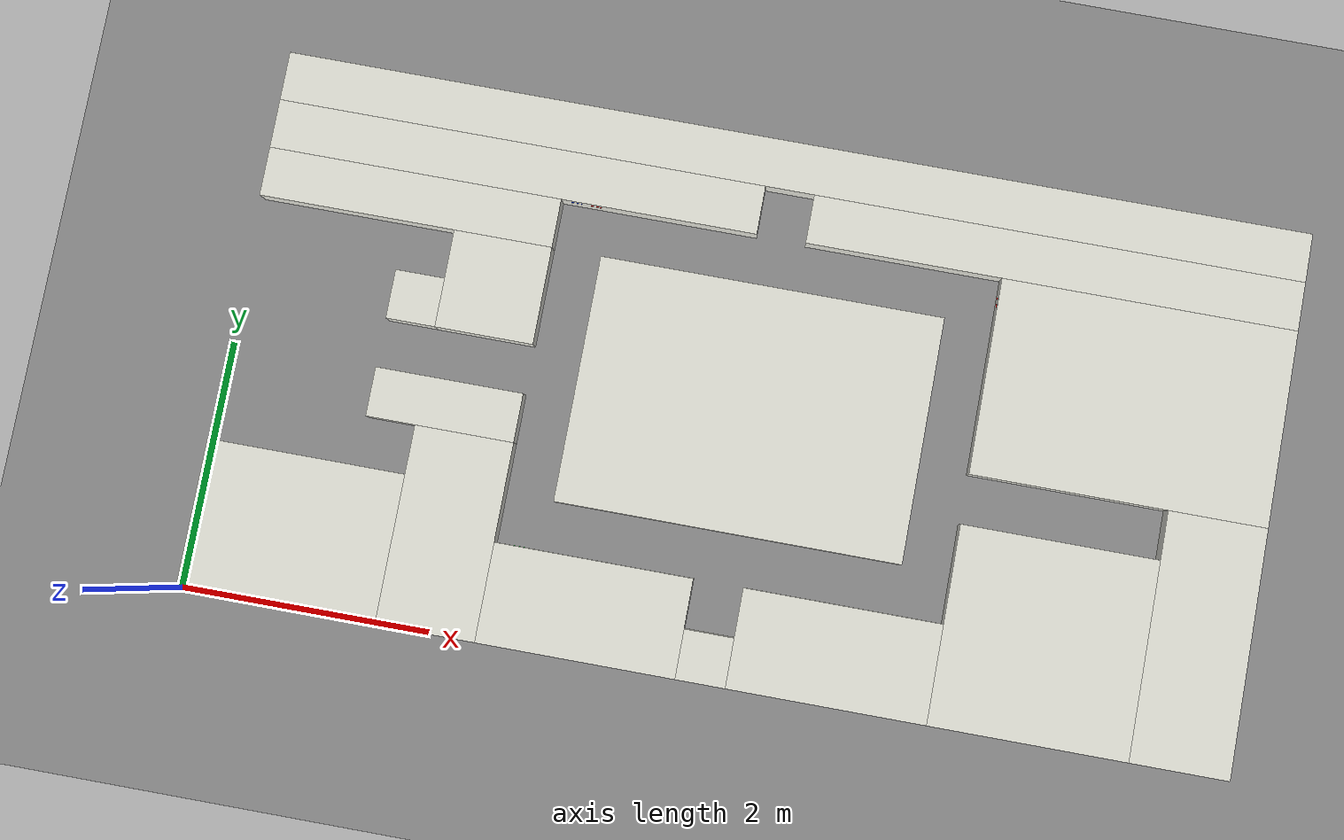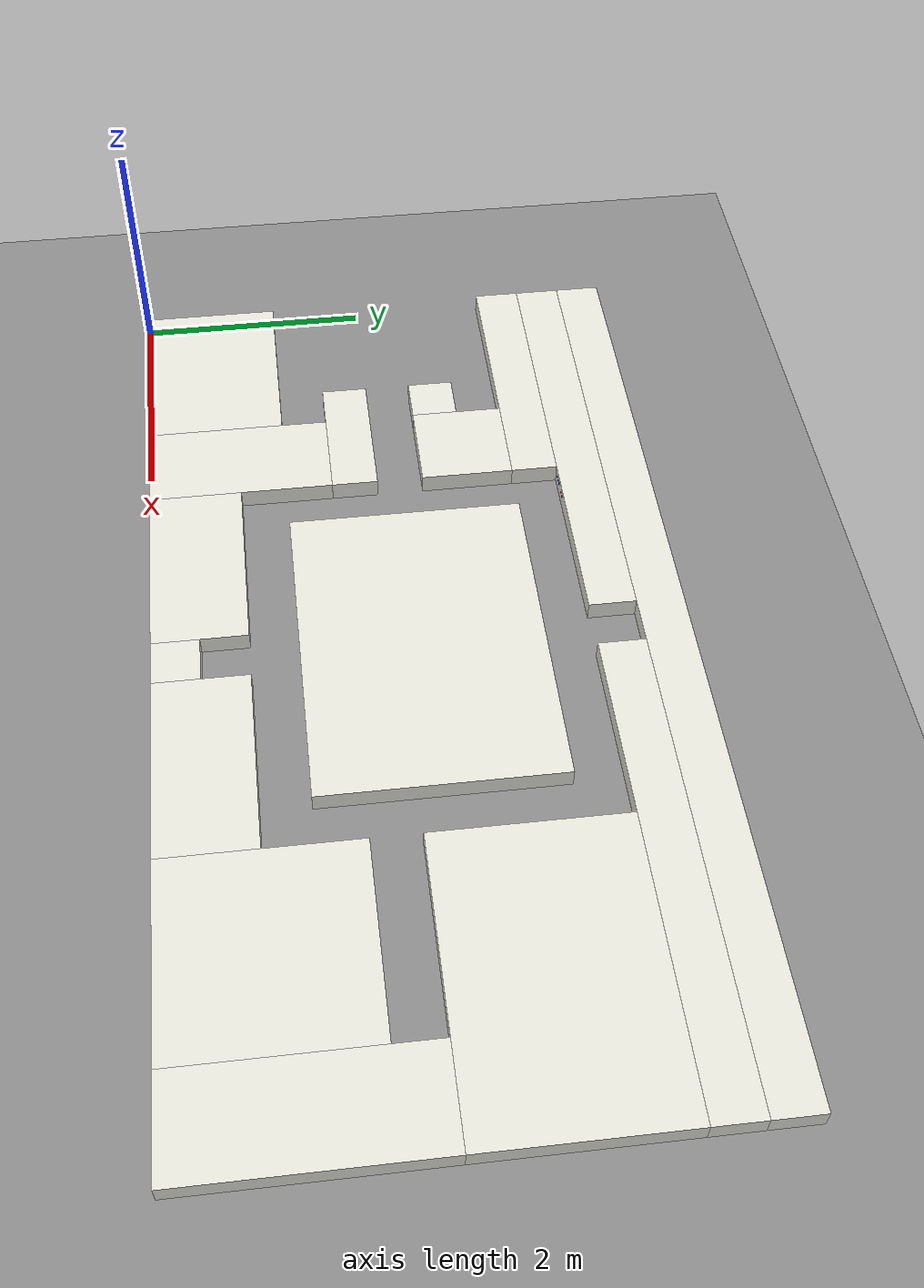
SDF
<sdf version="1.9">
 <world name="ros2_world">
  <model name="ground_plane">
   <static>true</static>
   <link name="link">
    <collision name="collision">
     <geometry><plane><normal>0 0 1</normal><size>30 30</size></plane></geometry>
    </collision>
    <visual name="visual">
     <geometry><plane><normal>0 0 1</normal><size>30 30</size></plane></geometry>
     <material><ambient>0.55 0.55 0.55 1</ambient><diffuse>0.55 0.55 0.55 1</diffuse></material>
    </visual>
   </link>
  </model>
  <model name="paredes">
   <static>true</static>
   <link name="bloque_0">
    <pose>4.2 4.2 0.085 0 0 0</pose>
    <collision name="colision"><geometry><box><size>8.4 0.4 0.17</size></box></geometry></collision>
    <visual name="visual">
     <geometry><box><size>8.4 0.4 0.17</size></box></geometry>
     <material><ambient>0.9 0.9 0.86 1</ambient><diffuse>0.9 0.9 0.86 1</diffuse></material>
    </visual>
   </link>
   <link name="bloque_1">
    <pose>2 3.8 0.085 0 0 0</pose>
    <collision name="colision"><geometry><box><size>4 0.4 0.17</size></box></geometry></collision>
    <visual name="visual">
     <geometry><box><size>4 0.4 0.17</size></box></geometry>
     <material><ambient>0.9 0.9 0.86 1</ambient><diffuse>0.9 0.9 0.86 1</diffuse></material>
    </visual>
   </link>
   <link name="bloque_2">
    <pose>6.4 3.8 0.085 0 0 0</pose>
    <collision name="colision"><geometry><box><size>4 0.4 0.17</size></box></geometry></collision>
    <visual name="visual">
     <geometry><box><size>4 0.4 0.17</size></box></geometry>
     <material><ambient>0.9 0.9 0.86 1</ambient><diffuse>0.9 0.9 0.86 1</diffuse></material>
    </visual>
   </link>
   <link name="bloque_3">
    <pose>1.2 3.4 0.085 0 0 0</pose>
    <collision name="colision"><geometry><box><size>2.4 0.4 0.17</size></box></geometry></collision>
    <visual name="visual">
     <geometry><box><size>2.4 0.4 0.17</size></box></geometry>
     <material><ambient>0.9 0.9 0.86 1</ambient><diffuse>0.9 0.9 0.86 1</diffuse></material>
    </visual>
   </link>
   <link name="bloque_4">
    <pose>7.2 2.8 0.085 0 0 0</pose>
    <collision name="colision"><geometry><box><size>2.4 1.6 0.17</size></box></geometry></collision>
    <visual name="visual">
     <geometry><box><size>2.4 1.6 0.17</size></box></geometry>
     <material><ambient>0.9 0.9 0.86 1</ambient><diffuse>0.9 0.9 0.86 1</diffuse></material>
    </visual>
   </link>
   <link name="bloque_5">
    <pose>2 2.8 0.085 0 0 0</pose>
    <collision name="colision"><geometry><box><size>0.8 0.8 0.17</size></box></geometry></collision>
    <visual name="visual">
     <geometry><box><size>0.8 0.8 0.17</size></box></geometry>
     <material><ambient>0.9 0.9 0.86 1</ambient><diffuse>0.9 0.9 0.86 1</diffuse></material>
    </visual>
   </link>
   <link name="bloque_6">
    <pose>4.2 2.2 0.085 0 0 0</pose>
    <collision name="colision"><geometry><box><size>2.8 2 0.17</size></box></geometry></collision>
    <visual name="visual">
     <geometry><box><size>2.8 2 0.17</size></box></geometry>
     <material><ambient>0.9 0.9 0.86 1</ambient><diffuse>0.9 0.9 0.86 1</diffuse></material>
    </visual>
   </link>
   <link name="bloque_7">
    <pose>1.4 2.6 0.085 0 0 0</pose>
    <collision name="colision"><geometry><box><size>0.4 0.4 0.17</size></box></geometry></collision>
    <visual name="visual">
     <geometry><box><size>0.4 0.4 0.17</size></box></geometry>
     <material><ambient>0.9 0.9 0.86 1</ambient><diffuse>0.9 0.9 0.86 1</diffuse></material>
    </visual>
   </link>
   <link name="bloque_8">
    <pose>1.8 1.8 0.085 0 0 0</pose>
    <collision name="colision"><geometry><box><size>1.2 0.4 0.17</size></box></geometry></collision>
    <visual name="visual">
     <geometry><box><size>1.2 0.4 0.17</size></box></geometry>
     <material><ambient>0.9 0.9 0.86 1</ambient><diffuse>0.9 0.9 0.86 1</diffuse></material>
    </visual>
   </link>
   <link name="bloque_9">
    <pose>8 1 0.085 0 0 0</pose>
    <collision name="colision"><geometry><box><size>0.8 2 0.17</size></box></geometry></collision>
    <visual name="visual">
     <geometry><box><size>0.8 2 0.17</size></box></geometry>
     <material><ambient>0.9 0.9 0.86 1</ambient><diffuse>0.9 0.9 0.86 1</diffuse></material>
    </visual>
   </link>
   <link name="bloque_10">
    <pose>2 0.8 0.085 0 0 0</pose>
    <collision name="colision"><geometry><box><size>0.8 1.6 0.17</size></box></geometry></collision>
    <visual name="visual">
     <geometry><box><size>0.8 1.6 0.17</size></box></geometry>
     <material><ambient>0.9 0.9 0.86 1</ambient><diffuse>0.9 0.9 0.86 1</diffuse></material>
    </visual>
   </link>
   <link name="bloque_11">
    <pose>6.8 0.8 0.085 0 0 0</pose>
    <collision name="colision"><geometry><box><size>1.6 1.6 0.17</size></box></geometry></collision>
    <visual name="visual">
     <geometry><box><size>1.6 1.6 0.17</size></box></geometry>
     <material><ambient>0.9 0.9 0.86 1</ambient><diffuse>0.9 0.9 0.86 1</diffuse></material>
    </visual>
   </link>
   <link name="bloque_12">
    <pose>0.8 0.6 0.085 0 0 0</pose>
    <collision name="colision"><geometry><box><size>1.6 1.2 0.17</size></box></geometry></collision>
    <visual name="visual">
     <geometry><box><size>1.6 1.2 0.17</size></box></geometry>
     <material><ambient>0.9 0.9 0.86 1</ambient><diffuse>0.9 0.9 0.86 1</diffuse></material>
    </visual>
   </link>
   <link name="bloque_13">
    <pose>3.2 0.4 0.085 0 0 0</pose>
    <collision name="colision"><geometry><box><size>1.6 0.8 0.17</size></box></geometry></collision>
    <visual name="visual">
     <geometry><box><size>1.6 0.8 0.17</size></box></geometry>
     <material><ambient>0.9 0.9 0.86 1</ambient><diffuse>0.9 0.9 0.86 1</diffuse></material>
    </visual>
   </link>
   <link name="bloque_14">
    <pose>5.2 0.4 0.085 0 0 0</pose>
    <collision name="colision"><geometry><box><size>1.6 0.8 0.17</size></box></geometry></collision>
    <visual name="visual">
     <geometry><box><size>1.6 0.8 0.17</size></box></geometry>
     <material><ambient>0.9 0.9 0.86 1</ambient><diffuse>0.9 0.9 0.86 1</diffuse></material>
    </visual>
   </link>
   <link name="bloque_15">
    <pose>4.2 0.2 0.085 0 0 0</pose>
    <collision name="colision"><geometry><box><size>0.4 0.4 0.17</size></box></geometry></collision>
    <visual name="visual">
     <geometry><box><size>0.4 0.4 0.17</size></box></geometry>
     <material><ambient>0.9 0.9 0.86 1</ambient><diffuse>0.9 0.9 0.86 1</diffuse></material>
    </visual>
   </link>
  </model>
  <model name="flechas">
   <static>true</static>
   <link name="flecha_0">
    <pose>2.52 3.59875 0.115 0 0 0</pose>
    <visual name="p0">
     <pose>-0.007 0 0 0 0 0</pose>
     <geometry><box><size>0.085 0.0015 0.01</size></box></geometry>
     <material><ambient>0 0.2 1 1</ambient><diffuse>0 0.2 1 1</diffuse></material>
    </visual>
    <visual name="p1">
     <pose>0.03578 0 0 0 0 0</pose>
     <geometry><box><size>0.00056 0.0015 0.029</size></box></geometry>
     <material><ambient>0 0.2 1 1</ambient><diffuse>0 0.2 1 1</diffuse></material>
    </visual>
    <visual name="p2">
     <pose>0.03634 0 0 0 0 0</pose>
     <geometry><box><size>0.00056 0.0015 0.02784</size></box></geometry>
     <material><ambient>0 0.2 1 1</ambient><diffuse>0 0.2 1 1</diffuse></material>
    </visual>
    <visual name="p3">
     <pose>0.0369 0 0 0 0 0</pose>
     <geometry><box><size>0.00056 0.0015 0.02668</size></box></geometry>
     <material><ambient>0 0.2 1 1</ambient><diffuse>0 0.2 1 1</diffuse></material>
    </visual>
    <visual name="p4">
     <pose>0.03746 0 0 0 0 0</pose>
     <geometry><box><size>0.00056 0.0015 0.02552</size></box></geometry>
     <material><ambient>0 0.2 1 1</ambient><diffuse>0 0.2 1 1</diffuse></material>
    </visual>
    <visual name="p5">
     <pose>0.03802 0 0 0 0 0</pose>
     <geometry><box><size>0.00056 0.0015 0.02436</size></box></geometry>
     <material><ambient>0 0.2 1 1</ambient><diffuse>0 0.2 1 1</diffuse></material>
    </visual>
    <visual name="p6">
     <pose>0.03858 0 0 0 0 0</pose>
     <geometry><box><size>0.00056 0.0015 0.0232</size></box></geometry>
     <material><ambient>0 0.2 1 1</ambient><diffuse>0 0.2 1 1</diffuse></material>
    </visual>
    <visual name="p7">
     <pose>0.03914 0 0 0 0 0</pose>
     <geometry><box><size>0.00056 0.0015 0.02204</size></box></geometry>
     <material><ambient>0 0.2 1 1</ambient><diffuse>0 0.2 1 1</diffuse></material>
    </visual>
    <visual name="p8">
     <pose>0.0397 0 0 0 0 0</pose>
     <geometry><box><size>0.00056 0.0015 0.02088</size></box></geometry>
     <material><ambient>0 0.2 1 1</ambient><diffuse>0 0.2 1 1</diffuse></material>
    </visual>
    <visual name="p9">
     <pose>0.04026 0 0 0 0 0</pose>
     <geometry><box><size>0.00056 0.0015 0.01972</size></box></geometry>
     <material><ambient>0 0.2 1 1</ambient><diffuse>0 0.2 1 1</diffuse></material>
    </visual>
    <visual name="p10">
     <pose>0.04082 0 0 0 0 0</pose>
     <geometry><box><size>0.00056 0.0015 0.01856</size></box></geometry>
     <material><ambient>0 0.2 1 1</ambient><diffuse>0 0.2 1 1</diffuse></material>
    </visual>
    <visual name="p11">
     <pose>0.04138 0 0 0 0 0</pose>
     <geometry><box><size>0.00056 0.0015 0.0174</size></box></geometry>
     <material><ambient>0 0.2 1 1</ambient><diffuse>0 0.2 1 1</diffuse></material>
    </visual>
    <visual name="p12">
     <pose>0.04194 0 0 0 0 0</pose>
     <geometry><box><size>0.00056 0.0015 0.01624</size></box></geometry>
     <material><ambient>0 0.2 1 1</ambient><diffuse>0 0.2 1 1</diffuse></material>
    </visual>
    <visual name="p13">
     <pose>0.0425 0 0 0 0 0</pose>
     <geometry><box><size>0.00056 0.0015 0.01508</size></box></geometry>
     <material><ambient>0 0.2 1 1</ambient><diffuse>0 0.2 1 1</diffuse></material>
    </visual>
    <visual name="p14">
     <pose>0.04306 0 0 0 0 0</pose>
     <geometry><box><size>0.00056 0.0015 0.01392</size></box></geometry>
     <material><ambient>0 0.2 1 1</ambient><diffuse>0 0.2 1 1</diffuse></material>
    </visual>
    <visual name="p15">
     <pose>0.04362 0 0 0 0 0</pose>
     <geometry><box><size>0.00056 0.0015 0.01276</size></box></geometry>
     <material><ambient>0 0.2 1 1</ambient><diffuse>0 0.2 1 1</diffuse></material>
    </visual>
    <visual name="p16">
     <pose>0.04418 0 0 0 0 0</pose>
     <geometry><box><size>0.00056 0.0015 0.0116</size></box></geometry>
     <material><ambient>0 0.2 1 1</ambient><diffuse>0 0.2 1 1</diffuse></material>
    </visual>
    <visual name="p17">
     <pose>0.04474 0 0 0 0 0</pose>
     <geometry><box><size>0.00056 0.0015 0.01044</size></box></geometry>
     <material><ambient>0 0.2 1 1</ambient><diffuse>0 0.2 1 1</diffuse></material>
    </visual>
    <visual name="p18">
     <pose>0.0453 0 0 0 0 0</pose>
     <geometry><box><size>0.00056 0.0015 0.00928</size></box></geometry>
     <material><ambient>0 0.2 1 1</ambient><diffuse>0 0.2 1 1</diffuse></material>
    </visual>
    <visual name="p19">
     <pose>0.04586 0 0 0 0 0</pose>
     <geometry><box><size>0.00056 0.0015 0.00812</size></box></geometry>
     <material><ambient>0 0.2 1 1</ambient><diffuse>0 0.2 1 1</diffuse></material>
    </visual>
    <visual name="p20">
     <pose>0.04642 0 0 0 0 0</pose>
     <geometry><box><size>0.00056 0.0015 0.00696</size></box></geometry>
     <material><ambient>0 0.2 1 1</ambient><diffuse>0 0.2 1 1</diffuse></material>
    </visual>
    <visual name="p21">
     <pose>0.04698 0 0 0 0 0</pose>
     <geometry><box><size>0.00056 0.0015 0.0058</size></box></geometry>
     <material><ambient>0 0.2 1 1</ambient><diffuse>0 0.2 1 1</diffuse></material>
    </visual>
    <visual name="p22">
     <pose>0.04754 0 0 0 0 0</pose>
     <geometry><box><size>0.00056 0.0015 0.00464</size></box></geometry>
     <material><ambient>0 0.2 1 1</ambient><diffuse>0 0.2 1 1</diffuse></material>
    </visual>
    <visual name="p23">
     <pose>0.0481 0 0 0 0 0</pose>
     <geometry><box><size>0.00056 0.0015 0.00348</size></box></geometry>
     <material><ambient>0 0.2 1 1</ambient><diffuse>0 0.2 1 1</diffuse></material>
    </visual>
    <visual name="p24">
     <pose>0.04866 0 0 0 0 0</pose>
     <geometry><box><size>0.00056 0.0015 0.00232</size></box></geometry>
     <material><ambient>0 0.2 1 1</ambient><diffuse>0 0.2 1 1</diffuse></material>
    </visual>
    <visual name="p25">
     <pose>0.04922 0 0 0 0 0</pose>
     <geometry><box><size>0.00056 0.0015 0.00116</size></box></geometry>
     <material><ambient>0 0.2 1 1</ambient><diffuse>0 0.2 1 1</diffuse></material>
    </visual>
   </link>
   <link name="flecha_1">
    <pose>2.68 3.59875 0.115 0 0 0</pose>
    <visual name="p0">
     <pose>-0.007 0 0 0 0 0</pose>
     <geometry><box><size>0.085 0.0015 0.01</size></box></geometry>
     <material><ambient>1 0 0 1</ambient><diffuse>1 0 0 1</diffuse></material>
    </visual>
    <visual name="p1">
     <pose>0.03578 0 0 0 0 0</pose>
     <geometry><box><size>0.00056 0.0015 0.029</size></box></geometry>
     <material><ambient>1 0 0 1</ambient><diffuse>1 0 0 1</diffuse></material>
    </visual>
    <visual name="p2">
     <pose>0.03634 0 0 0 0 0</pose>
     <geometry><box><size>0.00056 0.0015 0.02784</size></box></geometry>
     <material><ambient>1 0 0 1</ambient><diffuse>1 0 0 1</diffuse></material>
    </visual>
    <visual name="p3">
     <pose>0.0369 0 0 0 0 0</pose>
     <geometry><box><size>0.00056 0.0015 0.02668</size></box></geometry>
     <material><ambient>1 0 0 1</ambient><diffuse>1 0 0 1</diffuse></material>
    </visual>
    <visual name="p4">
     <pose>0.03746 0 0 0 0 0</pose>
     <geometry><box><size>0.00056 0.0015 0.02552</size></box></geometry>
     <material><ambient>1 0 0 1</ambient><diffuse>1 0 0 1</diffuse></material>
    </visual>
    <visual name="p5">
     <pose>0.03802 0 0 0 0 0</pose>
     <geometry><box><size>0.00056 0.0015 0.02436</size></box></geometry>
     <material><ambient>1 0 0 1</ambient><diffuse>1 0 0 1</diffuse></material>
    </visual>
    <visual name="p6">
     <pose>0.03858 0 0 0 0 0</pose>
     <geometry><box><size>0.00056 0.0015 0.0232</size></box></geometry>
     <material><ambient>1 0 0 1</ambient><diffuse>1 0 0 1</diffuse></material>
    </visual>
    <visual name="p7">
     <pose>0.03914 0 0 0 0 0</pose>
     <geometry><box><size>0.00056 0.0015 0.02204</size></box></geometry>
     <material><ambient>1 0 0 1</ambient><diffuse>1 0 0 1</diffuse></material>
    </visual>
    <visual name="p8">
     <pose>0.0397 0 0 0 0 0</pose>
     <geometry><box><size>0.00056 0.0015 0.02088</size></box></geometry>
     <material><ambient>1 0 0 1</ambient><diffuse>1 0 0 1</diffuse></material>
    </visual>
    <visual name="p9">
     <pose>0.04026 0 0 0 0 0</pose>
     <geometry><box><size>0.00056 0.0015 0.01972</size></box></geometry>
     <material><ambient>1 0 0 1</ambient><diffuse>1 0 0 1</diffuse></material>
    </visual>
    <visual name="p10">
     <pose>0.04082 0 0 0 0 0</pose>
     <geometry><box><size>0.00056 0.0015 0.01856</size></box></geometry>
     <material><ambient>1 0 0 1</ambient><diffuse>1 0 0 1</diffuse></material>
    </visual>
    <visual name="p11">
     <pose>0.04138 0 0 0 0 0</pose>
     <geometry><box><size>0.00056 0.0015 0.0174</size></box></geometry>
     <material><ambient>1 0 0 1</ambient><diffuse>1 0 0 1</diffuse></material>
    </visual>
    <visual name="p12">
     <pose>0.04194 0 0 0 0 0</pose>
     <geometry><box><size>0.00056 0.0015 0.01624</size></box></geometry>
     <material><ambient>1 0 0 1</ambient><diffuse>1 0 0 1</diffuse></material>
    </visual>
    <visual name="p13">
     <pose>0.0425 0 0 0 0 0</pose>
     <geometry><box><size>0.00056 0.0015 0.01508</size></box></geometry>
     <material><ambient>1 0 0 1</ambient><diffuse>1 0 0 1</diffuse></material>
    </visual>
    <visual name="p14">
     <pose>0.04306 0 0 0 0 0</pose>
     <geometry><box><size>0.00056 0.0015 0.01392</size></box></geometry>
     <material><ambient>1 0 0 1</ambient><diffuse>1 0 0 1</diffuse></material>
    </visual>
    <visual name="p15">
     <pose>0.04362 0 0 0 0 0</pose>
     <geometry><box><size>0.00056 0.0015 0.01276</size></box></geometry>
     <material><ambient>1 0 0 1</ambient><diffuse>1 0 0 1</diffuse></material>
    </visual>
    <visual name="p16">
     <pose>0.04418 0 0 0 0 0</pose>
     <geometry><box><size>0.00056 0.0015 0.0116</size></box></geometry>
     <material><ambient>1 0 0 1</ambient><diffuse>1 0 0 1</diffuse></material>
    </visual>
    <visual name="p17">
     <pose>0.04474 0 0 0 0 0</pose>
     <geometry><box><size>0.00056 0.0015 0.01044</size></box></geometry>
     <material><ambient>1 0 0 1</ambient><diffuse>1 0 0 1</diffuse></material>
    </visual>
    <visual name="p18">
     <pose>0.0453 0 0 0 0 0</pose>
     <geometry><box><size>0.00056 0.0015 0.00928</size></box></geometry>
     <material><ambient>1 0 0 1</ambient><diffuse>1 0 0 1</diffuse></material>
    </visual>
    <visual name="p19">
     <pose>0.04586 0 0 0 0 0</pose>
     <geometry><box><size>0.00056 0.0015 0.00812</size></box></geometry>
     <material><ambient>1 0 0 1</ambient><diffuse>1 0 0 1</diffuse></material>
    </visual>
    <visual name="p20">
     <pose>0.04642 0 0 0 0 0</pose>
     <geometry><box><size>0.00056 0.0015 0.00696</size></box></geometry>
     <material><ambient>1 0 0 1</ambient><diffuse>1 0 0 1</diffuse></material>
    </visual>
    <visual name="p21">
     <pose>0.04698 0 0 0 0 0</pose>
     <geometry><box><size>0.00056 0.0015 0.0058</size></box></geometry>
     <material><ambient>1 0 0 1</ambient><diffuse>1 0 0 1</diffuse></material>
    </visual>
    <visual name="p22">
     <pose>0.04754 0 0 0 0 0</pose>
     <geometry><box><size>0.00056 0.0015 0.00464</size></box></geometry>
     <material><ambient>1 0 0 1</ambient><diffuse>1 0 0 1</diffuse></material>
    </visual>
    <visual name="p23">
     <pose>0.0481 0 0 0 0 0</pose>
     <geometry><box><size>0.00056 0.0015 0.00348</size></box></geometry>
     <material><ambient>1 0 0 1</ambient><diffuse>1 0 0 1</diffuse></material>
    </visual>
    <visual name="p24">
     <pose>0.04866 0 0 0 0 0</pose>
     <geometry><box><size>0.00056 0.0015 0.00232</size></box></geometry>
     <material><ambient>1 0 0 1</ambient><diffuse>1 0 0 1</diffuse></material>
    </visual>
    <visual name="p25">
     <pose>0.04922 0 0 0 0 0</pose>
     <geometry><box><size>0.00056 0.0015 0.00116</size></box></geometry>
     <material><ambient>1 0 0 1</ambient><diffuse>1 0 0 1</diffuse></material>
    </visual>
   </link>
   <link name="flecha_2">
    <pose>5.99875 3.4 0.115 0 -0.31416 -1.5708</pose>
    <visual name="p0">
     <pose>-0.007 0 0 0 0 0</pose>
     <geometry><box><size>0.085 0.0015 0.01</size></box></geometry>
     <material><ambient>1 0 0 1</ambient><diffuse>1 0 0 1</diffuse></material>
    </visual>
    <visual name="p1">
     <pose>0.03578 0 0 0 0 0</pose>
     <geometry><box><size>0.00056 0.0015 0.029</size></box></geometry>
     <material><ambient>1 0 0 1</ambient><diffuse>1 0 0 1</diffuse></material>
    </visual>
    <visual name="p2">
     <pose>0.03634 0 0 0 0 0</pose>
     <geometry><box><size>0.00056 0.0015 0.02784</size></box></geometry>
     <material><ambient>1 0 0 1</ambient><diffuse>1 0 0 1</diffuse></material>
    </visual>
    <visual name="p3">
     <pose>0.0369 0 0 0 0 0</pose>
     <geometry><box><size>0.00056 0.0015 0.02668</size></box></geometry>
     <material><ambient>1 0 0 1</ambient><diffuse>1 0 0 1</diffuse></material>
    </visual>
    <visual name="p4">
     <pose>0.03746 0 0 0 0 0</pose>
     <geometry><box><size>0.00056 0.0015 0.02552</size></box></geometry>
     <material><ambient>1 0 0 1</ambient><diffuse>1 0 0 1</diffuse></material>
    </visual>
    <visual name="p5">
     <pose>0.03802 0 0 0 0 0</pose>
     <geometry><box><size>0.00056 0.0015 0.02436</size></box></geometry>
     <material><ambient>1 0 0 1</ambient><diffuse>1 0 0 1</diffuse></material>
    </visual>
    <visual name="p6">
     <pose>0.03858 0 0 0 0 0</pose>
     <geometry><box><size>0.00056 0.0015 0.0232</size></box></geometry>
     <material><ambient>1 0 0 1</ambient><diffuse>1 0 0 1</diffuse></material>
    </visual>
    <visual name="p7">
     <pose>0.03914 0 0 0 0 0</pose>
     <geometry><box><size>0.00056 0.0015 0.02204</size></box></geometry>
     <material><ambient>1 0 0 1</ambient><diffuse>1 0 0 1</diffuse></material>
    </visual>
    <visual name="p8">
     <pose>0.0397 0 0 0 0 0</pose>
     <geometry><box><size>0.00056 0.0015 0.02088</size></box></geometry>
     <material><ambient>1 0 0 1</ambient><diffuse>1 0 0 1</diffuse></material>
    </visual>
    <visual name="p9">
     <pose>0.04026 0 0 0 0 0</pose>
     <geometry><box><size>0.00056 0.0015 0.01972</size></box></geometry>
     <material><ambient>1 0 0 1</ambient><diffuse>1 0 0 1</diffuse></material>
    </visual>
    <visual name="p10">
     <pose>0.04082 0 0 0 0 0</pose>
     <geometry><box><size>0.00056 0.0015 0.01856</size></box></geometry>
     <material><ambient>1 0 0 1</ambient><diffuse>1 0 0 1</diffuse></material>
    </visual>
    <visual name="p11">
     <pose>0.04138 0 0 0 0 0</pose>
     <geometry><box><size>0.00056 0.0015 0.0174</size></box></geometry>
     <material><ambient>1 0 0 1</ambient><diffuse>1 0 0 1</diffuse></material>
    </visual>
    <visual name="p12">
     <pose>0.04194 0 0 0 0 0</pose>
     <geometry><box><size>0.00056 0.0015 0.01624</size></box></geometry>
     <material><ambient>1 0 0 1</ambient><diffuse>1 0 0 1</diffuse></material>
    </visual>
    <visual name="p13">
     <pose>0.0425 0 0 0 0 0</pose>
     <geometry><box><size>0.00056 0.0015 0.01508</size></box></geometry>
     <material><ambient>1 0 0 1</ambient><diffuse>1 0 0 1</diffuse></material>
    </visual>
    <visual name="p14">
     <pose>0.04306 0 0 0 0 0</pose>
     <geometry><box><size>0.00056 0.0015 0.01392</size></box></geometry>
     <material><ambient>1 0 0 1</ambient><diffuse>1 0 0 1</diffuse></material>
    </visual>
    <visual name="p15">
     <pose>0.04362 0 0 0 0 0</pose>
     <geometry><box><size>0.00056 0.0015 0.01276</size></box></geometry>
     <material><ambient>1 0 0 1</ambient><diffuse>1 0 0 1</diffuse></material>
    </visual>
    <visual name="p16">
     <pose>0.04418 0 0 0 0 0</pose>
     <geometry><box><size>0.00056 0.0015 0.0116</size></box></geometry>
     <material><ambient>1 0 0 1</ambient><diffuse>1 0 0 1</diffuse></material>
    </visual>
    <visual name="p17">
     <pose>0.04474 0 0 0 0 0</pose>
     <geometry><box><size>0.00056 0.0015 0.01044</size></box></geometry>
     <material><ambient>1 0 0 1</ambient><diffuse>1 0 0 1</diffuse></material>
    </visual>
    <visual name="p18">
     <pose>0.0453 0 0 0 0 0</pose>
     <geometry><box><size>0.00056 0.0015 0.00928</size></box></geometry>
     <material><ambient>1 0 0 1</ambient><diffuse>1 0 0 1</diffuse></material>
    </visual>
    <visual name="p19">
     <pose>0.04586 0 0 0 0 0</pose>
     <geometry><box><size>0.00056 0.0015 0.00812</size></box></geometry>
     <material><ambient>1 0 0 1</ambient><diffuse>1 0 0 1</diffuse></material>
    </visual>
    <visual name="p20">
     <pose>0.04642 0 0 0 0 0</pose>
     <geometry><box><size>0.00056 0.0015 0.00696</size></box></geometry>
     <material><ambient>1 0 0 1</ambient><diffuse>1 0 0 1</diffuse></material>
    </visual>
    <visual name="p21">
     <pose>0.04698 0 0 0 0 0</pose>
     <geometry><box><size>0.00056 0.0015 0.0058</size></box></geometry>
     <material><ambient>1 0 0 1</ambient><diffuse>1 0 0 1</diffuse></material>
    </visual>
    <visual name="p22">
     <pose>0.04754 0 0 0 0 0</pose>
     <geometry><box><size>0.00056 0.0015 0.00464</size></box></geometry>
     <material><ambient>1 0 0 1</ambient><diffuse>1 0 0 1</diffuse></material>
    </visual>
    <visual name="p23">
     <pose>0.0481 0 0 0 0 0</pose>
     <geometry><box><size>0.00056 0.0015 0.00348</size></box></geometry>
     <material><ambient>1 0 0 1</ambient><diffuse>1 0 0 1</diffuse></material>
    </visual>
    <visual name="p24">
     <pose>0.04866 0 0 0 0 0</pose>
     <geometry><box><size>0.00056 0.0015 0.00232</size></box></geometry>
     <material><ambient>1 0 0 1</ambient><diffuse>1 0 0 1</diffuse></material>
    </visual>
    <visual name="p25">
     <pose>0.04922 0 0 0 0 0</pose>
     <geometry><box><size>0.00056 0.0015 0.00116</size></box></geometry>
     <material><ambient>1 0 0 1</ambient><diffuse>1 0 0 1</diffuse></material>
    </visual>
   </link>
   <link name="flecha_3">
    <pose>2.79875 2.12 0.115 0 0 1.5708</pose>
    <visual name="p0">
     <pose>-0.007 0 0 0 0 0</pose>
     <geometry><box><size>0.085 0.0015 0.01</size></box></geometry>
     <material><ambient>0 0.2 1 1</ambient><diffuse>0 0.2 1 1</diffuse></material>
    </visual>
    <visual name="p1">
     <pose>0.03578 0 0 0 0 0</pose>
     <geometry><box><size>0.00056 0.0015 0.029</size></box></geometry>
     <material><ambient>0 0.2 1 1</ambient><diffuse>0 0.2 1 1</diffuse></material>
    </visual>
    <visual name="p2">
     <pose>0.03634 0 0 0 0 0</pose>
     <geometry><box><size>0.00056 0.0015 0.02784</size></box></geometry>
     <material><ambient>0 0.2 1 1</ambient><diffuse>0 0.2 1 1</diffuse></material>
    </visual>
    <visual name="p3">
     <pose>0.0369 0 0 0 0 0</pose>
     <geometry><box><size>0.00056 0.0015 0.02668</size></box></geometry>
     <material><ambient>0 0.2 1 1</ambient><diffuse>0 0.2 1 1</diffuse></material>
    </visual>
    <visual name="p4">
     <pose>0.03746 0 0 0 0 0</pose>
     <geometry><box><size>0.00056 0.0015 0.02552</size></box></geometry>
     <material><ambient>0 0.2 1 1</ambient><diffuse>0 0.2 1 1</diffuse></material>
    </visual>
    <visual name="p5">
     <pose>0.03802 0 0 0 0 0</pose>
     <geometry><box><size>0.00056 0.0015 0.02436</size></box></geometry>
     <material><ambient>0 0.2 1 1</ambient><diffuse>0 0.2 1 1</diffuse></material>
    </visual>
    <visual name="p6">
     <pose>0.03858 0 0 0 0 0</pose>
     <geometry><box><size>0.00056 0.0015 0.0232</size></box></geometry>
     <material><ambient>0 0.2 1 1</ambient><diffuse>0 0.2 1 1</diffuse></material>
    </visual>
    <visual name="p7">
     <pose>0.03914 0 0 0 0 0</pose>
     <geometry><box><size>0.00056 0.0015 0.02204</size></box></geometry>
     <material><ambient>0 0.2 1 1</ambient><diffuse>0 0.2 1 1</diffuse></material>
    </visual>
    <visual name="p8">
     <pose>0.0397 0 0 0 0 0</pose>
     <geometry><box><size>0.00056 0.0015 0.02088</size></box></geometry>
     <material><ambient>0 0.2 1 1</ambient><diffuse>0 0.2 1 1</diffuse></material>
    </visual>
    <visual name="p9">
     <pose>0.04026 0 0 0 0 0</pose>
     <geometry><box><size>0.00056 0.0015 0.01972</size></box></geometry>
     <material><ambient>0 0.2 1 1</ambient><diffuse>0 0.2 1 1</diffuse></material>
    </visual>
    <visual name="p10">
     <pose>0.04082 0 0 0 0 0</pose>
     <geometry><box><size>0.00056 0.0015 0.01856</size></box></geometry>
     <material><ambient>0 0.2 1 1</ambient><diffuse>0 0.2 1 1</diffuse></material>
    </visual>
    <visual name="p11">
     <pose>0.04138 0 0 0 0 0</pose>
     <geometry><box><size>0.00056 0.0015 0.0174</size></box></geometry>
     <material><ambient>0 0.2 1 1</ambient><diffuse>0 0.2 1 1</diffuse></material>
    </visual>
    <visual name="p12">
     <pose>0.04194 0 0 0 0 0</pose>
     <geometry><box><size>0.00056 0.0015 0.01624</size></box></geometry>
     <material><ambient>0 0.2 1 1</ambient><diffuse>0 0.2 1 1</diffuse></material>
    </visual>
    <visual name="p13">
     <pose>0.0425 0 0 0 0 0</pose>
     <geometry><box><size>0.00056 0.0015 0.01508</size></box></geometry>
     <material><ambient>0 0.2 1 1</ambient><diffuse>0 0.2 1 1</diffuse></material>
    </visual>
    <visual name="p14">
     <pose>0.04306 0 0 0 0 0</pose>
     <geometry><box><size>0.00056 0.0015 0.01392</size></box></geometry>
     <material><ambient>0 0.2 1 1</ambient><diffuse>0 0.2 1 1</diffuse></material>
    </visual>
    <visual name="p15">
     <pose>0.04362 0 0 0 0 0</pose>
     <geometry><box><size>0.00056 0.0015 0.01276</size></box></geometry>
     <material><ambient>0 0.2 1 1</ambient><diffuse>0 0.2 1 1</diffuse></material>
    </visual>
    <visual name="p16">
     <pose>0.04418 0 0 0 0 0</pose>
     <geometry><box><size>0.00056 0.0015 0.0116</size></box></geometry>
     <material><ambient>0 0.2 1 1</ambient><diffuse>0 0.2 1 1</diffuse></material>
    </visual>
    <visual name="p17">
     <pose>0.04474 0 0 0 0 0</pose>
     <geometry><box><size>0.00056 0.0015 0.01044</size></box></geometry>
     <material><ambient>0 0.2 1 1</ambient><diffuse>0 0.2 1 1</diffuse></material>
    </visual>
    <visual name="p18">
     <pose>0.0453 0 0 0 0 0</pose>
     <geometry><box><size>0.00056 0.0015 0.00928</size></box></geometry>
     <material><ambient>0 0.2 1 1</ambient><diffuse>0 0.2 1 1</diffuse></material>
    </visual>
    <visual name="p19">
     <pose>0.04586 0 0 0 0 0</pose>
     <geometry><box><size>0.00056 0.0015 0.00812</size></box></geometry>
     <material><ambient>0 0.2 1 1</ambient><diffuse>0 0.2 1 1</diffuse></material>
    </visual>
    <visual name="p20">
     <pose>0.04642 0 0 0 0 0</pose>
     <geometry><box><size>0.00056 0.0015 0.00696</size></box></geometry>
     <material><ambient>0 0.2 1 1</ambient><diffuse>0 0.2 1 1</diffuse></material>
    </visual>
    <visual name="p21">
     <pose>0.04698 0 0 0 0 0</pose>
     <geometry><box><size>0.00056 0.0015 0.0058</size></box></geometry>
     <material><ambient>0 0.2 1 1</ambient><diffuse>0 0.2 1 1</diffuse></material>
    </visual>
    <visual name="p22">
     <pose>0.04754 0 0 0 0 0</pose>
     <geometry><box><size>0.00056 0.0015 0.00464</size></box></geometry>
     <material><ambient>0 0.2 1 1</ambient><diffuse>0 0.2 1 1</diffuse></material>
    </visual>
    <visual name="p23">
     <pose>0.0481 0 0 0 0 0</pose>
     <geometry><box><size>0.00056 0.0015 0.00348</size></box></geometry>
     <material><ambient>0 0.2 1 1</ambient><diffuse>0 0.2 1 1</diffuse></material>
    </visual>
    <visual name="p24">
     <pose>0.04866 0 0 0 0 0</pose>
     <geometry><box><size>0.00056 0.0015 0.00232</size></box></geometry>
     <material><ambient>0 0.2 1 1</ambient><diffuse>0 0.2 1 1</diffuse></material>
    </visual>
    <visual name="p25">
     <pose>0.04922 0 0 0 0 0</pose>
     <geometry><box><size>0.00056 0.0015 0.00116</size></box></geometry>
     <material><ambient>0 0.2 1 1</ambient><diffuse>0 0.2 1 1</diffuse></material>
    </visual>
   </link>
   <link name="flecha_4">
    <pose>2.79875 2.28 0.125 0 0 1.5708</pose>
    <visual name="p0">
     <pose>-0.007 0 0 0 0 0</pose>
     <geometry><box><size>0.085 0.0015 0.01</size></box></geometry>
     <material><ambient>1 0 0 1</ambient><diffuse>1 0 0 1</diffuse></material>
    </visual>
    <visual name="p1">
     <pose>0.03578 0 0 0 0 0</pose>
     <geometry><box><size>0.00056 0.0015 0.029</size></box></geometry>
     <material><ambient>1 0 0 1</ambient><diffuse>1 0 0 1</diffuse></material>
    </visual>
    <visual name="p2">
     <pose>0.03634 0 0 0 0 0</pose>
     <geometry><box><size>0.00056 0.0015 0.02784</size></box></geometry>
     <material><ambient>1 0 0 1</ambient><diffuse>1 0 0 1</diffuse></material>
    </visual>
    <visual name="p3">
     <pose>0.0369 0 0 0 0 0</pose>
     <geometry><box><size>0.00056 0.0015 0.02668</size></box></geometry>
     <material><ambient>1 0 0 1</ambient><diffuse>1 0 0 1</diffuse></material>
    </visual>
    <visual name="p4">
     <pose>0.03746 0 0 0 0 0</pose>
     <geometry><box><size>0.00056 0.0015 0.02552</size></box></geometry>
     <material><ambient>1 0 0 1</ambient><diffuse>1 0 0 1</diffuse></material>
    </visual>
    <visual name="p5">
     <pose>0.03802 0 0 0 0 0</pose>
     <geometry><box><size>0.00056 0.0015 0.02436</size></box></geometry>
     <material><ambient>1 0 0 1</ambient><diffuse>1 0 0 1</diffuse></material>
    </visual>
    <visual name="p6">
     <pose>0.03858 0 0 0 0 0</pose>
     <geometry><box><size>0.00056 0.0015 0.0232</size></box></geometry>
     <material><ambient>1 0 0 1</ambient><diffuse>1 0 0 1</diffuse></material>
    </visual>
    <visual name="p7">
     <pose>0.03914 0 0 0 0 0</pose>
     <geometry><box><size>0.00056 0.0015 0.02204</size></box></geometry>
     <material><ambient>1 0 0 1</ambient><diffuse>1 0 0 1</diffuse></material>
    </visual>
    <visual name="p8">
     <pose>0.0397 0 0 0 0 0</pose>
     <geometry><box><size>0.00056 0.0015 0.02088</size></box></geometry>
     <material><ambient>1 0 0 1</ambient><diffuse>1 0 0 1</diffuse></material>
    </visual>
    <visual name="p9">
     <pose>0.04026 0 0 0 0 0</pose>
     <geometry><box><size>0.00056 0.0015 0.01972</size></box></geometry>
     <material><ambient>1 0 0 1</ambient><diffuse>1 0 0 1</diffuse></material>
    </visual>
    <visual name="p10">
     <pose>0.04082 0 0 0 0 0</pose>
     <geometry><box><size>0.00056 0.0015 0.01856</size></box></geometry>
     <material><ambient>1 0 0 1</ambient><diffuse>1 0 0 1</diffuse></material>
    </visual>
    <visual name="p11">
     <pose>0.04138 0 0 0 0 0</pose>
     <geometry><box><size>0.00056 0.0015 0.0174</size></box></geometry>
     <material><ambient>1 0 0 1</ambient><diffuse>1 0 0 1</diffuse></material>
    </visual>
    <visual name="p12">
     <pose>0.04194 0 0 0 0 0</pose>
     <geometry><box><size>0.00056 0.0015 0.01624</size></box></geometry>
     <material><ambient>1 0 0 1</ambient><diffuse>1 0 0 1</diffuse></material>
    </visual>
    <visual name="p13">
     <pose>0.0425 0 0 0 0 0</pose>
     <geometry><box><size>0.00056 0.0015 0.01508</size></box></geometry>
     <material><ambient>1 0 0 1</ambient><diffuse>1 0 0 1</diffuse></material>
    </visual>
    <visual name="p14">
     <pose>0.04306 0 0 0 0 0</pose>
     <geometry><box><size>0.00056 0.0015 0.01392</size></box></geometry>
     <material><ambient>1 0 0 1</ambient><diffuse>1 0 0 1</diffuse></material>
    </visual>
    <visual name="p15">
     <pose>0.04362 0 0 0 0 0</pose>
     <geometry><box><size>0.00056 0.0015 0.01276</size></box></geometry>
     <material><ambient>1 0 0 1</ambient><diffuse>1 0 0 1</diffuse></material>
    </visual>
    <visual name="p16">
     <pose>0.04418 0 0 0 0 0</pose>
     <geometry><box><size>0.00056 0.0015 0.0116</size></box></geometry>
     <material><ambient>1 0 0 1</ambient><diffuse>1 0 0 1</diffuse></material>
    </visual>
    <visual name="p17">
     <pose>0.04474 0 0 0 0 0</pose>
     <geometry><box><size>0.00056 0.0015 0.01044</size></box></geometry>
     <material><ambient>1 0 0 1</ambient><diffuse>1 0 0 1</diffuse></material>
    </visual>
    <visual name="p18">
     <pose>0.0453 0 0 0 0 0</pose>
     <geometry><box><size>0.00056 0.0015 0.00928</size></box></geometry>
     <material><ambient>1 0 0 1</ambient><diffuse>1 0 0 1</diffuse></material>
    </visual>
    <visual name="p19">
     <pose>0.04586 0 0 0 0 0</pose>
     <geometry><box><size>0.00056 0.0015 0.00812</size></box></geometry>
     <material><ambient>1 0 0 1</ambient><diffuse>1 0 0 1</diffuse></material>
    </visual>
    <visual name="p20">
     <pose>0.04642 0 0 0 0 0</pose>
     <geometry><box><size>0.00056 0.0015 0.00696</size></box></geometry>
     <material><ambient>1 0 0 1</ambient><diffuse>1 0 0 1</diffuse></material>
    </visual>
    <visual name="p21">
     <pose>0.04698 0 0 0 0 0</pose>
     <geometry><box><size>0.00056 0.0015 0.0058</size></box></geometry>
     <material><ambient>1 0 0 1</ambient><diffuse>1 0 0 1</diffuse></material>
    </visual>
    <visual name="p22">
     <pose>0.04754 0 0 0 0 0</pose>
     <geometry><box><size>0.00056 0.0015 0.00464</size></box></geometry>
     <material><ambient>1 0 0 1</ambient><diffuse>1 0 0 1</diffuse></material>
    </visual>
    <visual name="p23">
     <pose>0.0481 0 0 0 0 0</pose>
     <geometry><box><size>0.00056 0.0015 0.00348</size></box></geometry>
     <material><ambient>1 0 0 1</ambient><diffuse>1 0 0 1</diffuse></material>
    </visual>
    <visual name="p24">
     <pose>0.04866 0 0 0 0 0</pose>
     <geometry><box><size>0.00056 0.0015 0.00232</size></box></geometry>
     <material><ambient>1 0 0 1</ambient><diffuse>1 0 0 1</diffuse></material>
    </visual>
    <visual name="p25">
     <pose>0.04922 0 0 0 0 0</pose>
     <geometry><box><size>0.00056 0.0015 0.00116</size></box></geometry>
     <material><ambient>1 0 0 1</ambient><diffuse>1 0 0 1</diffuse></material>
    </visual>
   </link>
   <link name="flecha_5">
    <pose>2.79875 2.28 0.045 0 0 -1.5708</pose>
    <visual name="p0">
     <pose>-0.007 0 0 0 0 0</pose>
     <geometry><box><size>0.085 0.0015 0.01</size></box></geometry>
     <material><ambient>0 0.7 0.1 1</ambient><diffuse>0 0.7 0.1 1</diffuse></material>
    </visual>
    <visual name="p1">
     <pose>0.03578 0 0 0 0 0</pose>
     <geometry><box><size>0.00056 0.0015 0.029</size></box></geometry>
     <material><ambient>0 0.7 0.1 1</ambient><diffuse>0 0.7 0.1 1</diffuse></material>
    </visual>
    <visual name="p2">
     <pose>0.03634 0 0 0 0 0</pose>
     <geometry><box><size>0.00056 0.0015 0.02784</size></box></geometry>
     <material><ambient>0 0.7 0.1 1</ambient><diffuse>0 0.7 0.1 1</diffuse></material>
    </visual>
    <visual name="p3">
     <pose>0.0369 0 0 0 0 0</pose>
     <geometry><box><size>0.00056 0.0015 0.02668</size></box></geometry>
     <material><ambient>0 0.7 0.1 1</ambient><diffuse>0 0.7 0.1 1</diffuse></material>
    </visual>
    <visual name="p4">
     <pose>0.03746 0 0 0 0 0</pose>
     <geometry><box><size>0.00056 0.0015 0.02552</size></box></geometry>
     <material><ambient>0 0.7 0.1 1</ambient><diffuse>0 0.7 0.1 1</diffuse></material>
    </visual>
    <visual name="p5">
     <pose>0.03802 0 0 0 0 0</pose>
     <geometry><box><size>0.00056 0.0015 0.02436</size></box></geometry>
     <material><ambient>0 0.7 0.1 1</ambient><diffuse>0 0.7 0.1 1</diffuse></material>
    </visual>
    <visual name="p6">
     <pose>0.03858 0 0 0 0 0</pose>
     <geometry><box><size>0.00056 0.0015 0.0232</size></box></geometry>
     <material><ambient>0 0.7 0.1 1</ambient><diffuse>0 0.7 0.1 1</diffuse></material>
    </visual>
    <visual name="p7">
     <pose>0.03914 0 0 0 0 0</pose>
     <geometry><box><size>0.00056 0.0015 0.02204</size></box></geometry>
     <material><ambient>0 0.7 0.1 1</ambient><diffuse>0 0.7 0.1 1</diffuse></material>
    </visual>
    <visual name="p8">
     <pose>0.0397 0 0 0 0 0</pose>
     <geometry><box><size>0.00056 0.0015 0.02088</size></box></geometry>
     <material><ambient>0 0.7 0.1 1</ambient><diffuse>0 0.7 0.1 1</diffuse></material>
    </visual>
    <visual name="p9">
     <pose>0.04026 0 0 0 0 0</pose>
     <geometry><box><size>0.00056 0.0015 0.01972</size></box></geometry>
     <material><ambient>0 0.7 0.1 1</ambient><diffuse>0 0.7 0.1 1</diffuse></material>
    </visual>
    <visual name="p10">
     <pose>0.04082 0 0 0 0 0</pose>
     <geometry><box><size>0.00056 0.0015 0.01856</size></box></geometry>
     <material><ambient>0 0.7 0.1 1</ambient><diffuse>0 0.7 0.1 1</diffuse></material>
    </visual>
    <visual name="p11">
     <pose>0.04138 0 0 0 0 0</pose>
     <geometry><box><size>0.00056 0.0015 0.0174</size></box></geometry>
     <material><ambient>0 0.7 0.1 1</ambient><diffuse>0 0.7 0.1 1</diffuse></material>
    </visual>
    <visual name="p12">
     <pose>0.04194 0 0 0 0 0</pose>
     <geometry><box><size>0.00056 0.0015 0.01624</size></box></geometry>
     <material><ambient>0 0.7 0.1 1</ambient><diffuse>0 0.7 0.1 1</diffuse></material>
    </visual>
    <visual name="p13">
     <pose>0.0425 0 0 0 0 0</pose>
     <geometry><box><size>0.00056 0.0015 0.01508</size></box></geometry>
     <material><ambient>0 0.7 0.1 1</ambient><diffuse>0 0.7 0.1 1</diffuse></material>
    </visual>
    <visual name="p14">
     <pose>0.04306 0 0 0 0 0</pose>
     <geometry><box><size>0.00056 0.0015 0.01392</size></box></geometry>
     <material><ambient>0 0.7 0.1 1</ambient><diffuse>0 0.7 0.1 1</diffuse></material>
    </visual>
    <visual name="p15">
     <pose>0.04362 0 0 0 0 0</pose>
     <geometry><box><size>0.00056 0.0015 0.01276</size></box></geometry>
     <material><ambient>0 0.7 0.1 1</ambient><diffuse>0 0.7 0.1 1</diffuse></material>
    </visual>
    <visual name="p16">
     <pose>0.04418 0 0 0 0 0</pose>
     <geometry><box><size>0.00056 0.0015 0.0116</size></box></geometry>
     <material><ambient>0 0.7 0.1 1</ambient><diffuse>0 0.7 0.1 1</diffuse></material>
    </visual>
    <visual name="p17">
     <pose>0.04474 0 0 0 0 0</pose>
     <geometry><box><size>0.00056 0.0015 0.01044</size></box></geometry>
     <material><ambient>0 0.7 0.1 1</ambient><diffuse>0 0.7 0.1 1</diffuse></material>
    </visual>
    <visual name="p18">
     <pose>0.0453 0 0 0 0 0</pose>
     <geometry><box><size>0.00056 0.0015 0.00928</size></box></geometry>
     <material><ambient>0 0.7 0.1 1</ambient><diffuse>0 0.7 0.1 1</diffuse></material>
    </visual>
    <visual name="p19">
     <pose>0.04586 0 0 0 0 0</pose>
     <geometry><box><size>0.00056 0.0015 0.00812</size></box></geometry>
     <material><ambient>0 0.7 0.1 1</ambient><diffuse>0 0.7 0.1 1</diffuse></material>
    </visual>
    <visual name="p20">
     <pose>0.04642 0 0 0 0 0</pose>
     <geometry><box><size>0.00056 0.0015 0.00696</size></box></geometry>
     <material><ambient>0 0.7 0.1 1</ambient><diffuse>0 0.7 0.1 1</diffuse></material>
    </visual>
    <visual name="p21">
     <pose>0.04698 0 0 0 0 0</pose>
     <geometry><box><size>0.00056 0.0015 0.0058</size></box></geometry>
     <material><ambient>0 0.7 0.1 1</ambient><diffuse>0 0.7 0.1 1</diffuse></material>
    </visual>
    <visual name="p22">
     <pose>0.04754 0 0 0 0 0</pose>
     <geometry><box><size>0.00056 0.0015 0.00464</size></box></geometry>
     <material><ambient>0 0.7 0.1 1</ambient><diffuse>0 0.7 0.1 1</diffuse></material>
    </visual>
    <visual name="p23">
     <pose>0.0481 0 0 0 0 0</pose>
     <geometry><box><size>0.00056 0.0015 0.00348</size></box></geometry>
     <material><ambient>0 0.7 0.1 1</ambient><diffuse>0 0.7 0.1 1</diffuse></material>
    </visual>
    <visual name="p24">
     <pose>0.04866 0 0 0 0 0</pose>
     <geometry><box><size>0.00056 0.0015 0.00232</size></box></geometry>
     <material><ambient>0 0.7 0.1 1</ambient><diffuse>0 0.7 0.1 1</diffuse></material>
    </visual>
    <visual name="p25">
     <pose>0.04922 0 0 0 0 0</pose>
     <geometry><box><size>0.00056 0.0015 0.00116</size></box></geometry>
     <material><ambient>0 0.7 0.1 1</ambient><diffuse>0 0.7 0.1 1</diffuse></material>
    </visual>
   </link>
   <link name="flecha_6">
    <pose>2.6 0.80125 0.115 0 0.20944 0</pose>
    <visual name="p0">
     <pose>-0.007 0 0 0 0 0</pose>
     <geometry><box><size>0.085 0.0015 0.01</size></box></geometry>
     <material><ambient>0 0.7 0.1 1</ambient><diffuse>0 0.7 0.1 1</diffuse></material>
    </visual>
    <visual name="p1">
     <pose>0.03578 0 0 0 0 0</pose>
     <geometry><box><size>0.00056 0.0015 0.029</size></box></geometry>
     <material><ambient>0 0.7 0.1 1</ambient><diffuse>0 0.7 0.1 1</diffuse></material>
    </visual>
    <visual name="p2">
     <pose>0.03634 0 0 0 0 0</pose>
     <geometry><box><size>0.00056 0.0015 0.02784</size></box></geometry>
     <material><ambient>0 0.7 0.1 1</ambient><diffuse>0 0.7 0.1 1</diffuse></material>
    </visual>
    <visual name="p3">
     <pose>0.0369 0 0 0 0 0</pose>
     <geometry><box><size>0.00056 0.0015 0.02668</size></box></geometry>
     <material><ambient>0 0.7 0.1 1</ambient><diffuse>0 0.7 0.1 1</diffuse></material>
    </visual>
    <visual name="p4">
     <pose>0.03746 0 0 0 0 0</pose>
     <geometry><box><size>0.00056 0.0015 0.02552</size></box></geometry>
     <material><ambient>0 0.7 0.1 1</ambient><diffuse>0 0.7 0.1 1</diffuse></material>
    </visual>
    <visual name="p5">
     <pose>0.03802 0 0 0 0 0</pose>
     <geometry><box><size>0.00056 0.0015 0.02436</size></box></geometry>
     <material><ambient>0 0.7 0.1 1</ambient><diffuse>0 0.7 0.1 1</diffuse></material>
    </visual>
    <visual name="p6">
     <pose>0.03858 0 0 0 0 0</pose>
     <geometry><box><size>0.00056 0.0015 0.0232</size></box></geometry>
     <material><ambient>0 0.7 0.1 1</ambient><diffuse>0 0.7 0.1 1</diffuse></material>
    </visual>
    <visual name="p7">
     <pose>0.03914 0 0 0 0 0</pose>
     <geometry><box><size>0.00056 0.0015 0.02204</size></box></geometry>
     <material><ambient>0 0.7 0.1 1</ambient><diffuse>0 0.7 0.1 1</diffuse></material>
    </visual>
    <visual name="p8">
     <pose>0.0397 0 0 0 0 0</pose>
     <geometry><box><size>0.00056 0.0015 0.02088</size></box></geometry>
     <material><ambient>0 0.7 0.1 1</ambient><diffuse>0 0.7 0.1 1</diffuse></material>
    </visual>
    <visual name="p9">
     <pose>0.04026 0 0 0 0 0</pose>
     <geometry><box><size>0.00056 0.0015 0.01972</size></box></geometry>
     <material><ambient>0 0.7 0.1 1</ambient><diffuse>0 0.7 0.1 1</diffuse></material>
    </visual>
    <visual name="p10">
     <pose>0.04082 0 0 0 0 0</pose>
     <geometry><box><size>0.00056 0.0015 0.01856</size></box></geometry>
     <material><ambient>0 0.7 0.1 1</ambient><diffuse>0 0.7 0.1 1</diffuse></material>
    </visual>
    <visual name="p11">
     <pose>0.04138 0 0 0 0 0</pose>
     <geometry><box><size>0.00056 0.0015 0.0174</size></box></geometry>
     <material><ambient>0 0.7 0.1 1</ambient><diffuse>0 0.7 0.1 1</diffuse></material>
    </visual>
    <visual name="p12">
     <pose>0.04194 0 0 0 0 0</pose>
     <geometry><box><size>0.00056 0.0015 0.01624</size></box></geometry>
     <material><ambient>0 0.7 0.1 1</ambient><diffuse>0 0.7 0.1 1</diffuse></material>
    </visual>
    <visual name="p13">
     <pose>0.0425 0 0 0 0 0</pose>
     <geometry><box><size>0.00056 0.0015 0.01508</size></box></geometry>
     <material><ambient>0 0.7 0.1 1</ambient><diffuse>0 0.7 0.1 1</diffuse></material>
    </visual>
    <visual name="p14">
     <pose>0.04306 0 0 0 0 0</pose>
     <geometry><box><size>0.00056 0.0015 0.01392</size></box></geometry>
     <material><ambient>0 0.7 0.1 1</ambient><diffuse>0 0.7 0.1 1</diffuse></material>
    </visual>
    <visual name="p15">
     <pose>0.04362 0 0 0 0 0</pose>
     <geometry><box><size>0.00056 0.0015 0.01276</size></box></geometry>
     <material><ambient>0 0.7 0.1 1</ambient><diffuse>0 0.7 0.1 1</diffuse></material>
    </visual>
    <visual name="p16">
     <pose>0.04418 0 0 0 0 0</pose>
     <geometry><box><size>0.00056 0.0015 0.0116</size></box></geometry>
     <material><ambient>0 0.7 0.1 1</ambient><diffuse>0 0.7 0.1 1</diffuse></material>
    </visual>
    <visual name="p17">
     <pose>0.04474 0 0 0 0 0</pose>
     <geometry><box><size>0.00056 0.0015 0.01044</size></box></geometry>
     <material><ambient>0 0.7 0.1 1</ambient><diffuse>0 0.7 0.1 1</diffuse></material>
    </visual>
    <visual name="p18">
     <pose>0.0453 0 0 0 0 0</pose>
     <geometry><box><size>0.00056 0.0015 0.00928</size></box></geometry>
     <material><ambient>0 0.7 0.1 1</ambient><diffuse>0 0.7 0.1 1</diffuse></material>
    </visual>
    <visual name="p19">
     <pose>0.04586 0 0 0 0 0</pose>
     <geometry><box><size>0.00056 0.0015 0.00812</size></box></geometry>
     <material><ambient>0 0.7 0.1 1</ambient><diffuse>0 0.7 0.1 1</diffuse></material>
    </visual>
    <visual name="p20">
     <pose>0.04642 0 0 0 0 0</pose>
     <geometry><box><size>0.00056 0.0015 0.00696</size></box></geometry>
     <material><ambient>0 0.7 0.1 1</ambient><diffuse>0 0.7 0.1 1</diffuse></material>
    </visual>
    <visual name="p21">
     <pose>0.04698 0 0 0 0 0</pose>
     <geometry><box><size>0.00056 0.0015 0.0058</size></box></geometry>
     <material><ambient>0 0.7 0.1 1</ambient><diffuse>0 0.7 0.1 1</diffuse></material>
    </visual>
    <visual name="p22">
     <pose>0.04754 0 0 0 0 0</pose>
     <geometry><box><size>0.00056 0.0015 0.00464</size></box></geometry>
     <material><ambient>0 0.7 0.1 1</ambient><diffuse>0 0.7 0.1 1</diffuse></material>
    </visual>
    <visual name="p23">
     <pose>0.0481 0 0 0 0 0</pose>
     <geometry><box><size>0.00056 0.0015 0.00348</size></box></geometry>
     <material><ambient>0 0.7 0.1 1</ambient><diffuse>0 0.7 0.1 1</diffuse></material>
    </visual>
    <visual name="p24">
     <pose>0.04866 0 0 0 0 0</pose>
     <geometry><box><size>0.00056 0.0015 0.00232</size></box></geometry>
     <material><ambient>0 0.7 0.1 1</ambient><diffuse>0 0.7 0.1 1</diffuse></material>
    </visual>
    <visual name="p25">
     <pose>0.04922 0 0 0 0 0</pose>
     <geometry><box><size>0.00056 0.0015 0.00116</size></box></geometry>
     <material><ambient>0 0.7 0.1 1</ambient><diffuse>0 0.7 0.1 1</diffuse></material>
    </visual>
   </link>
  </model>
 </world>
</sdf>
